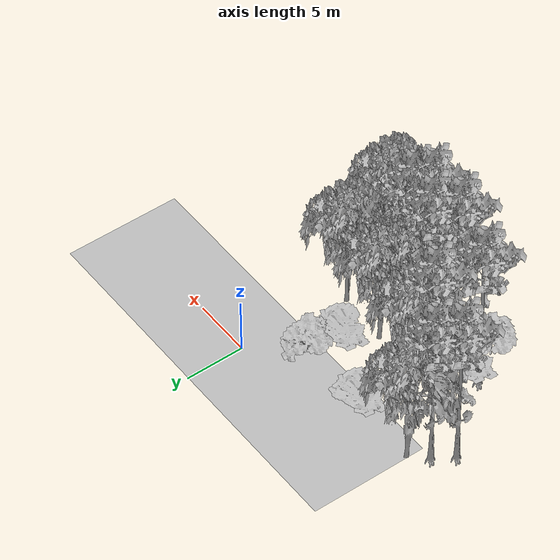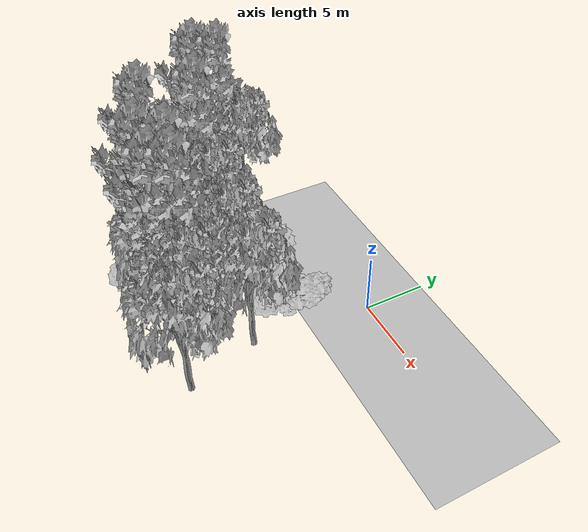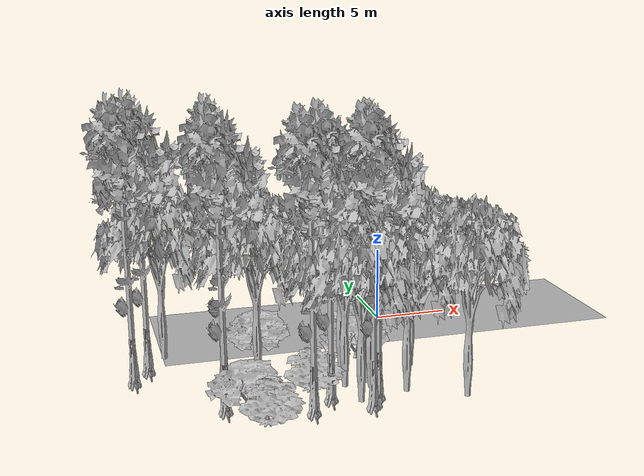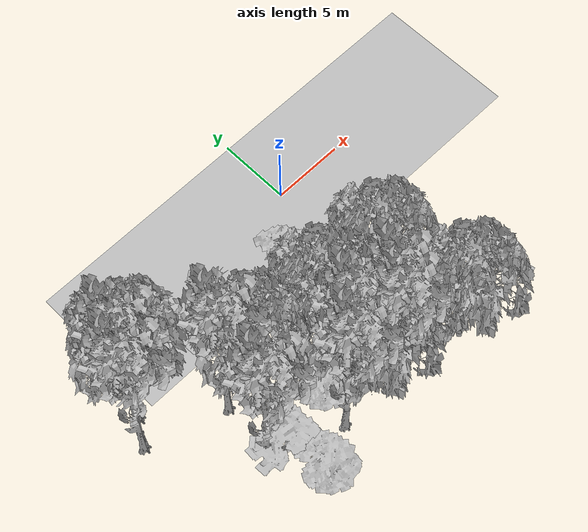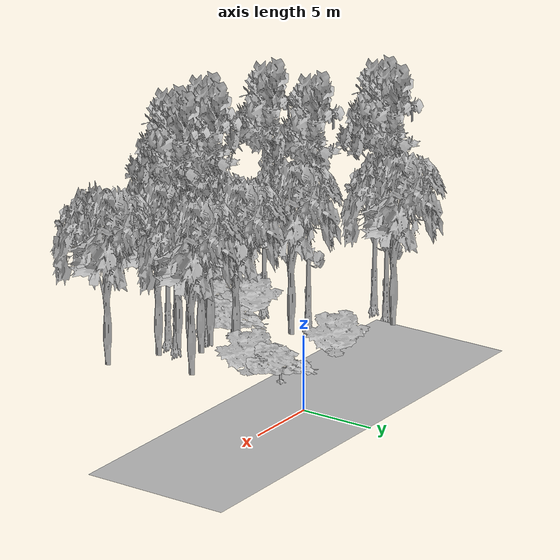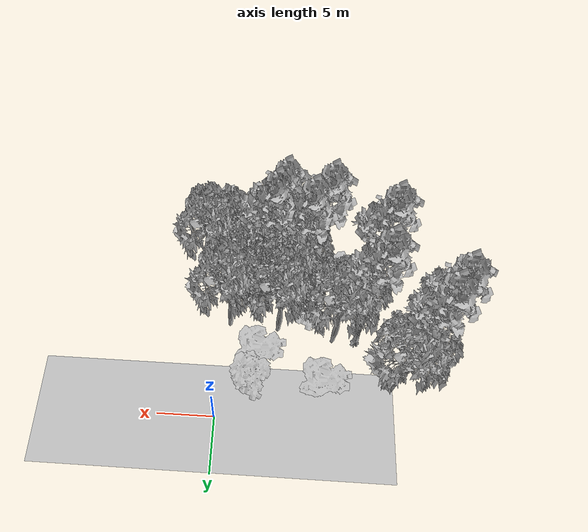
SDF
<sdf version="1.7">
 <world name="default">
  <model name="ground_plane">
   <static>1</static>
   <link name="link">
    <collision name="collision">
     <pose>-50 0 0 0 -0 0</pose>
     <geometry><plane><normal>0 0 1</normal><size>100 100</size></plane></geometry>
     <surface><contact><ode><min_depth>0.01</min_depth><max_vel>0</max_vel></ode></contact></surface>
    </collision>
    <visual name="grass">
     <cast_shadows>0</cast_shadows>
     <geometry>
      <mesh>
       <scale>0.5814285714285714 0.18142857142857144 0.1</scale>
       <uri>file://grass_plane/meshes/grass_plane.dae</uri>
      </mesh>
     </geometry>
    </visual>
   </link>
  </model>
  <model name="Tree 9">
   <static>1</static>
   <pose>-15.664485438454356 -3.526763142565402 0 1.57079 -0 0</pose>
   <link name="link">
    <collision name="collision">
     <geometry><mesh><scale>3.5 5 3.5</scale><uri>model://tree_2/meshes/tree_2.obj</uri></mesh></geometry>
    </collision>
    <visual name="visual">
     <geometry><mesh><scale>3.5 5 3.5</scale><uri>model://tree_2/meshes/tree_2.obj</uri></mesh></geometry>
    </visual>
   </link>
  </model>
  <model name="Tree 20">
   <static>1</static>
   <pose>-5.367888918800531 -8.953199204432263 0 1.57079 -0 0</pose>
   <link name="link">
    <collision name="collision">
     <geometry><mesh><scale>3.5 5 3.5</scale><uri>model://tree_2/meshes/tree_2.obj</uri></mesh></geometry>
    </collision>
    <visual name="visual">
     <geometry><mesh><scale>3.5 5 3.5</scale><uri>model://tree_2/meshes/tree_2.obj</uri></mesh></geometry>
    </visual>
   </link>
  </model>
  <model name="Tree 23">
   <static>1</static>
   <pose>-2.4384531195508927 -13.010256735968694 0 1.57079 -0 0</pose>
   <link name="link">
    <collision name="collision">
     <geometry><mesh><scale>3.5 5 3.5</scale><uri>model://tree_2/meshes/tree_2.obj</uri></mesh></geometry>
    </collision>
    <visual name="visual">
     <geometry><mesh><scale>3.5 5 3.5</scale><uri>model://tree_2/meshes/tree_2.obj</uri></mesh></geometry>
    </visual>
   </link>
  </model>
  <model name="Tree 40">
   <static>1</static>
   <pose>-4.161693316774432 -12.681939682685625 0 1.57079 -0 0</pose>
   <link name="link">
    <collision name="collision">
     <geometry><mesh><scale>3.5 5 3.5</scale><uri>model://tree_2/meshes/tree_2.obj</uri></mesh></geometry>
    </collision>
    <visual name="visual">
     <geometry><mesh><scale>3.5 5 3.5</scale><uri>model://tree_2/meshes/tree_2.obj</uri></mesh></geometry>
    </visual>
   </link>
  </model>
  <model name="Tree 43">
   <static>1</static>
   <pose>-13.089974054037974 -12.167593772931621 0 1.57079 -0 0</pose>
   <link name="link">
    <collision name="collision">
     <geometry><mesh><scale>3.5 5 3.5</scale><uri>model://tree_9/meshes/tree_9.obj</uri></mesh></geometry>
    </collision>
    <visual name="visual">
     <geometry><mesh><scale>3.5 5 3.5</scale><uri>model://tree_9/meshes/tree_9.obj</uri></mesh></geometry>
    </visual>
   </link>
  </model>
  <model name="Tree 56">
   <static>1</static>
   <pose>-11.210055905984703 -14.9077010627297 0 1.57079 -0 0</pose>
   <link name="link">
    <collision name="collision">
     <geometry><mesh><scale>4 2.5 4</scale><uri>model://tree_1/meshes/tree_1.obj</uri></mesh></geometry>
    </collision>
    <visual name="visual">
     <geometry><mesh><scale>4 2.5 4</scale><uri>model://tree_1/meshes/tree_1.obj</uri></mesh></geometry>
    </visual>
   </link>
  </model>
  <model name="Tree 59">
   <static>1</static>
   <pose>-5.469896241357027 -13.690976836545314 0 1.57079 -0 0</pose>
   <link name="link">
    <collision name="collision">
     <geometry><mesh><scale>3.5 5 3.5</scale><uri>model://tree_2/meshes/tree_2.obj</uri></mesh></geometry>
    </collision>
    <visual name="visual">
     <geometry><mesh><scale>3.5 5 3.5</scale><uri>model://tree_2/meshes/tree_2.obj</uri></mesh></geometry>
    </visual>
   </link>
  </model>
  <model name="Tree 70">
   <static>1</static>
   <pose>-6.838097956407687 -12.315704590866488 0 1.57079 -0 0</pose>
   <link name="link">
    <collision name="collision">
     <geometry><mesh><scale>3.5 5 3.5</scale><uri>model://tree_9/meshes/tree_9.obj</uri></mesh></geometry>
    </collision>
    <visual name="visual">
     <geometry><mesh><scale>3.5 5 3.5</scale><uri>model://tree_9/meshes/tree_9.obj</uri></mesh></geometry>
    </visual>
   </link>
  </model>
  <model name="Tree 81">
   <static>1</static>
   <pose>-4.353893628489075 -11.001807908033335 0 1.57079 -0 0</pose>
   <link name="link">
    <collision name="collision">
     <geometry><mesh><scale>3.5 5 3.5</scale><uri>model://tree_2/meshes/tree_2.obj</uri></mesh></geometry>
    </collision>
    <visual name="visual">
     <geometry><mesh><scale>3.5 5 3.5</scale><uri>model://tree_2/meshes/tree_2.obj</uri></mesh></geometry>
    </visual>
   </link>
  </model>
  <model name="Tree 93">
   <static>1</static>
   <pose>-11.859555520287337 -12.445513736285804 0 1.57079 -0 0</pose>
   <link name="link">
    <collision name="collision">
     <geometry><mesh><scale>3 2 3</scale><uri>model://tree_3/meshes/tree_3.obj</uri></mesh></geometry>
    </collision>
    <visual name="visual">
     <geometry><mesh><scale>3 2 3</scale><uri>model://tree_3/meshes/tree_3.obj</uri></mesh></geometry>
    </visual>
   </link>
  </model>
  <model name="Tree 97">
   <static>1</static>
   <pose>-4.069159797720204 -12.83672049357791 0 1.57079 -0 0</pose>
   <link name="link">
    <collision name="collision">
     <geometry><mesh><scale>3.5 5 3.5</scale><uri>model://tree_9/meshes/tree_9.obj</uri></mesh></geometry>
    </collision>
    <visual name="visual">
     <geometry><mesh><scale>3.5 5 3.5</scale><uri>model://tree_9/meshes/tree_9.obj</uri></mesh></geometry>
    </visual>
   </link>
  </model>
  <model name="Tree 109">
   <static>1</static>
   <pose>-3.0858606415987495 -3.9105254866629195 0 1.57079 -0 0</pose>
   <link name="link">
    <collision name="collision">
     <geometry><mesh><scale>4 2.5 4</scale><uri>model://tree_1/meshes/tree_1.obj</uri></mesh></geometry>
    </collision>
    <visual name="visual">
     <geometry><mesh><scale>4 2.5 4</scale><uri>model://tree_1/meshes/tree_1.obj</uri></mesh></geometry>
    </visual>
   </link>
  </model>
  <model name="Tree 114">
   <static>1</static>
   <pose>-3.6647787918444266 -6.788228618897316 0 1.57079 -0 0</pose>
   <link name="link">
    <collision name="collision">
     <geometry><mesh><scale>3 2 3</scale><uri>model://tree_3/meshes/tree_3.obj</uri></mesh></geometry>
    </collision>
    <visual name="visual">
     <geometry><mesh><scale>3 2 3</scale><uri>model://tree_3/meshes/tree_3.obj</uri></mesh></geometry>
    </visual>
   </link>
  </model>
  <model name="Tree 127">
   <static>1</static>
   <pose>0.7561482182029522 -14.722149034835194 0 1.57079 -0 0</pose>
   <link name="link">
    <collision name="collision">
     <geometry><mesh><scale>3.5 5 3.5</scale><uri>model://tree_2/meshes/tree_2.obj</uri></mesh></geometry>
    </collision>
    <visual name="visual">
     <geometry><mesh><scale>3.5 5 3.5</scale><uri>model://tree_2/meshes/tree_2.obj</uri></mesh></geometry>
    </visual>
   </link>
  </model>
  <model name="Tree 139">
   <static>1</static>
   <pose>-4.327074061843902 -11.869298194041292 0 1.57079 -0 0</pose>
   <link name="link">
    <collision name="collision">
     <geometry><mesh><scale>3.5 5 3.5</scale><uri>model://tree_2/meshes/tree_2.obj</uri></mesh></geometry>
    </collision>
    <visual name="visual">
     <geometry><mesh><scale>3.5 5 3.5</scale><uri>model://tree_2/meshes/tree_2.obj</uri></mesh></geometry>
    </visual>
   </link>
  </model>
  <model name="Tree 166">
   <static>1</static>
   <pose>-9.557065170303716 -3.9990262639308654 0 1.57079 -0 0</pose>
   <link name="link">
    <collision name="collision">
     <geometry><mesh><scale>3 2 3</scale><uri>model://tree_3/meshes/tree_3.obj</uri></mesh></geometry>
    </collision>
    <visual name="visual">
     <geometry><mesh><scale>3 2 3</scale><uri>model://tree_3/meshes/tree_3.obj</uri></mesh></geometry>
    </visual>
   </link>
  </model>
  <model name="Tree 186">
   <static>1</static>
   <pose>-8.271465466233884 -13.855833287674901 0 1.57079 -0 0</pose>
   <link name="link">
    <collision name="collision">
     <geometry><mesh><scale>3.5 5 3.5</scale><uri>model://tree_9/meshes/tree_9.obj</uri></mesh></geometry>
    </collision>
    <visual name="visual">
     <geometry><mesh><scale>3.5 5 3.5</scale><uri>model://tree_9/meshes/tree_9.obj</uri></mesh></geometry>
    </visual>
   </link>
  </model>
  <model name="Tree 189">
   <static>1</static>
   <pose>-0.9143561052140967 -9.259479326264746 0 1.57079 -0 0</pose>
   <link name="link">
    <collision name="collision">
     <geometry><mesh><scale>3.5 5 3.5</scale><uri>model://tree_2/meshes/tree_2.obj</uri></mesh></geometry>
    </collision>
    <visual name="visual">
     <geometry><mesh><scale>3.5 5 3.5</scale><uri>model://tree_2/meshes/tree_2.obj</uri></mesh></geometry>
    </visual>
   </link>
  </model>
  <model name="Tree 195">
   <static>1</static>
   <pose>-4.74016294865784 -13.991507065298505 0 1.57079 -0 0</pose>
   <link name="link">
    <collision name="collision">
     <geometry><mesh><scale>3.5 5 3.5</scale><uri>model://tree_9/meshes/tree_9.obj</uri></mesh></geometry>
    </collision>
    <visual name="visual">
     <geometry><mesh><scale>3.5 5 3.5</scale><uri>model://tree_9/meshes/tree_9.obj</uri></mesh></geometry>
    </visual>
   </link>
  </model>
  <model name="Tree 200">
   <static>1</static>
   <pose>-17.743842203025274 -6.439827956779007 0 1.57079 -0 0</pose>
   <link name="link">
    <collision name="collision">
     <geometry><mesh><scale>3.5 5 3.5</scale><uri>model://tree_9/meshes/tree_9.obj</uri></mesh></geometry>
    </collision>
    <visual name="visual">
     <geometry><mesh><scale>3.5 5 3.5</scale><uri>model://tree_9/meshes/tree_9.obj</uri></mesh></geometry>
    </visual>
   </link>
  </model>
  <model name="Tree 240">
   <static>1</static>
   <pose>-10.437373850661317 -8.102363913233091 0 1.57079 -0 0</pose>
   <link name="link">
    <collision name="collision">
     <geometry><mesh><scale>3.5 5 3.5</scale><uri>model://tree_2/meshes/tree_2.obj</uri></mesh></geometry>
    </collision>
    <visual name="visual">
     <geometry><mesh><scale>3.5 5 3.5</scale><uri>model://tree_2/meshes/tree_2.obj</uri></mesh></geometry>
    </visual>
   </link>
  </model>
  <model name="Tree 263">
   <static>1</static>
   <pose>-12.481011874865565 -8.190206590190051 0 1.57079 -0 0</pose>
   <link name="link">
    <collision name="collision">
     <geometry><mesh><scale>3.5 5 3.5</scale><uri>model://tree_9/meshes/tree_9.obj</uri></mesh></geometry>
    </collision>
    <visual name="visual">
     <geometry><mesh><scale>3.5 5 3.5</scale><uri>model://tree_9/meshes/tree_9.obj</uri></mesh></geometry>
    </visual>
   </link>
  </model>
  <model name="Tree 275">
   <static>1</static>
   <pose>-5.774551533187072 -11.272825189942186 0 1.57079 -0 0</pose>
   <link name="link">
    <collision name="collision">
     <geometry><mesh><scale>3.5 5 3.5</scale><uri>model://tree_2/meshes/tree_2.obj</uri></mesh></geometry>
    </collision>
    <visual name="visual">
     <geometry><mesh><scale>3.5 5 3.5</scale><uri>model://tree_2/meshes/tree_2.obj</uri></mesh></geometry>
    </visual>
   </link>
  </model>
  <model name="Tree 278">
   <static>1</static>
   <pose>-16.721116494127465 -4.830223819146054 0 1.57079 -0 0</pose>
   <link name="link">
    <collision name="collision">
     <geometry><mesh><scale>3.5 5 3.5</scale><uri>model://tree_9/meshes/tree_9.obj</uri></mesh></geometry>
    </collision>
    <visual name="visual">
     <geometry><mesh><scale>3.5 5 3.5</scale><uri>model://tree_9/meshes/tree_9.obj</uri></mesh></geometry>
    </visual>
   </link>
  </model>
  <model name="Tree 291">
   <static>1</static>
   <pose>-7.80408291865465 -11.049044155794352 0 1.57079 -0 0</pose>
   <link name="link">
    <collision name="collision">
     <geometry><mesh><scale>4 2.5 4</scale><uri>model://tree_1/meshes/tree_1.obj</uri></mesh></geometry>
    </collision>
    <visual name="visual">
     <geometry><mesh><scale>4 2.5 4</scale><uri>model://tree_1/meshes/tree_1.obj</uri></mesh></geometry>
    </visual>
   </link>
  </model>
 </world>
</sdf>
